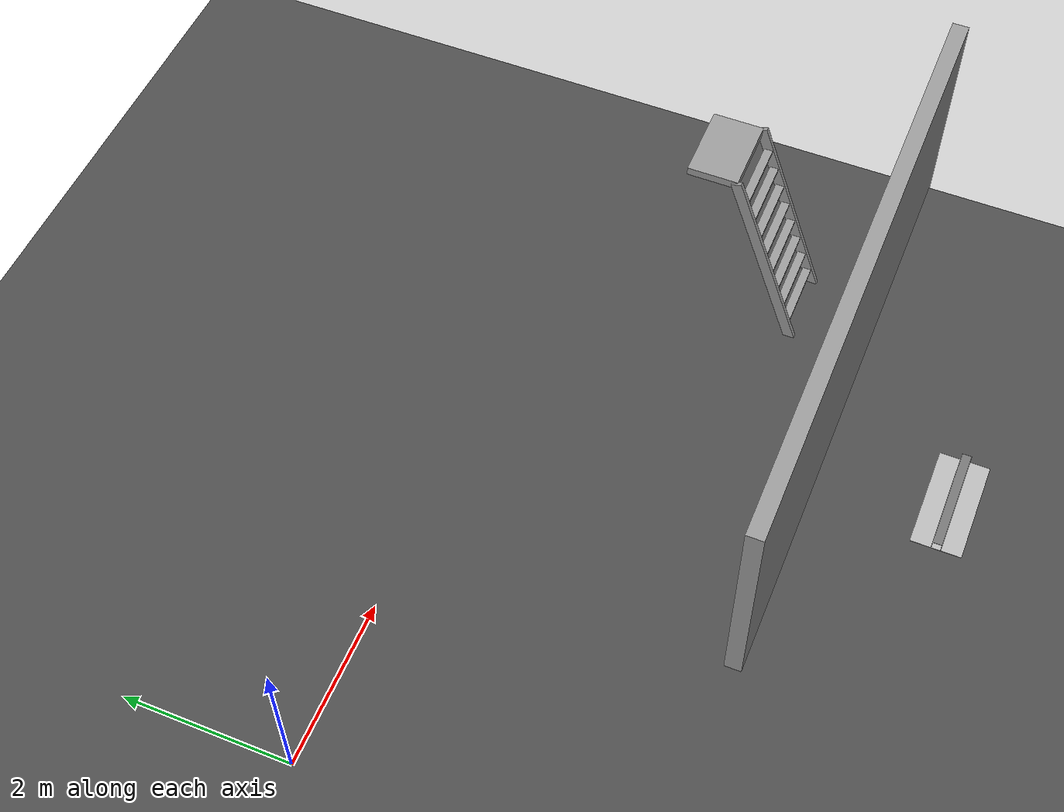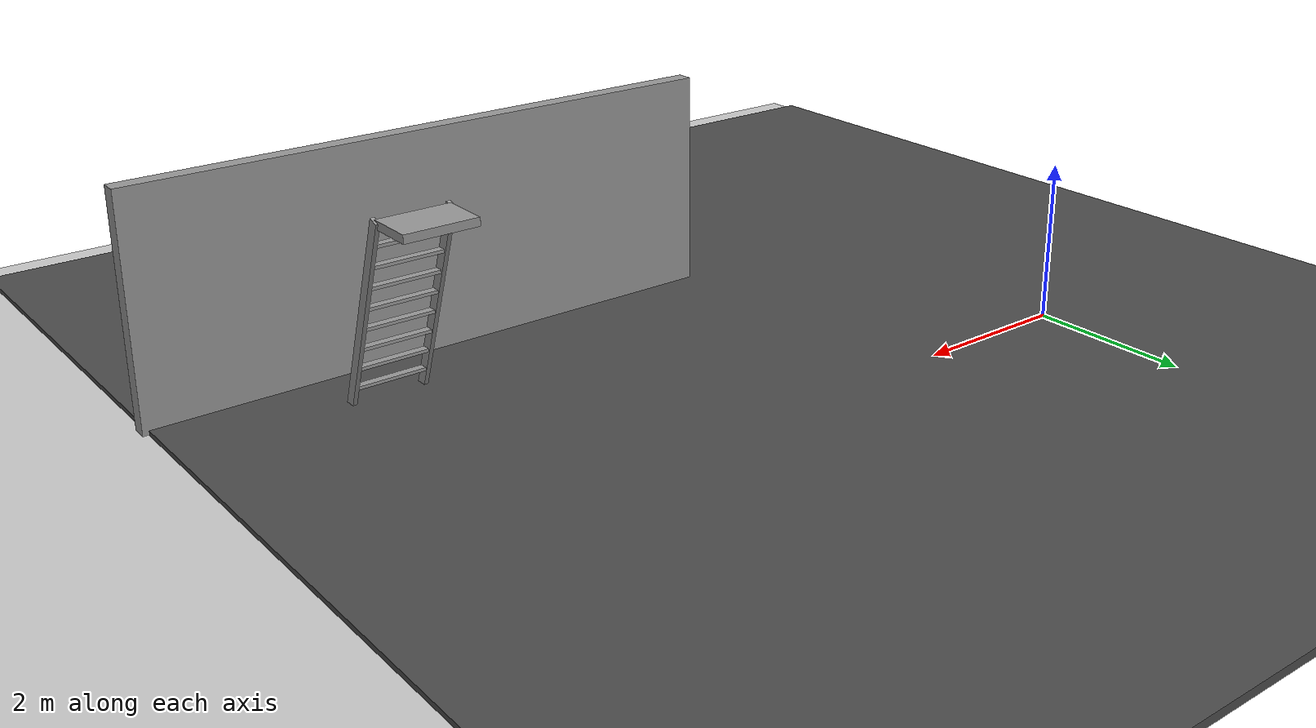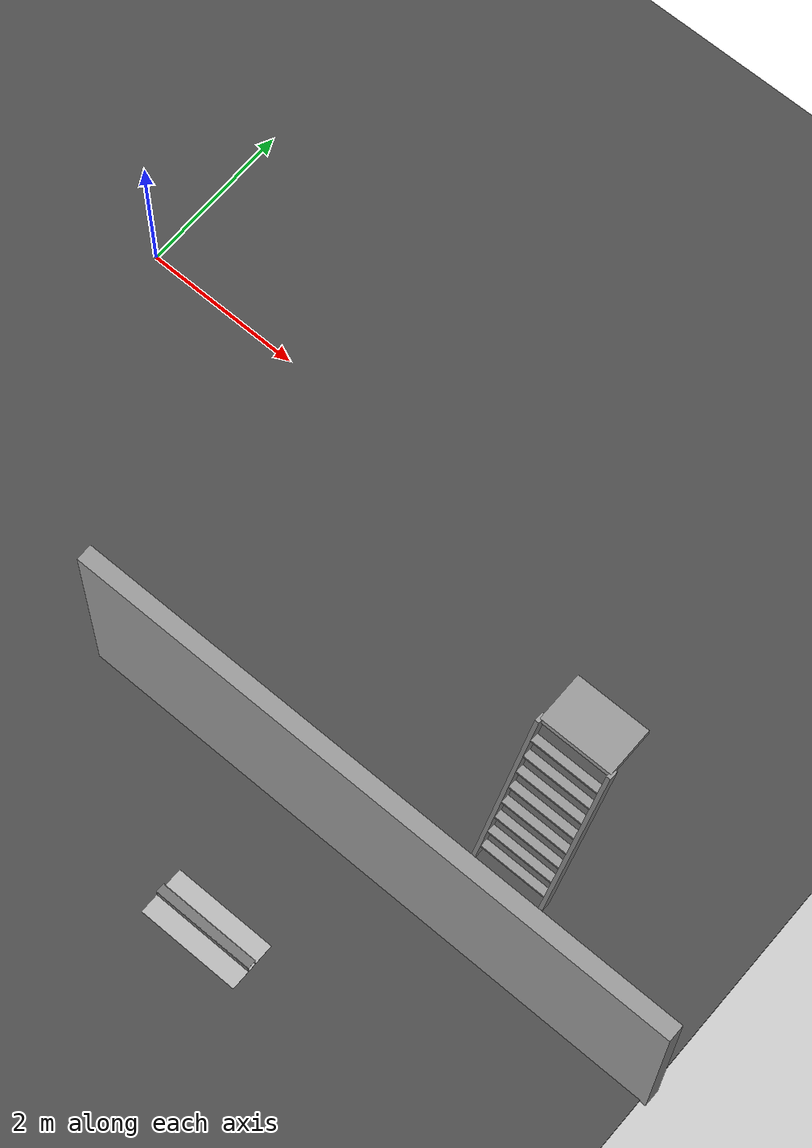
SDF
<sdf version="1.6">
 <world name="default">
  <model name="ground_plane">
   <static>1</static>
   <link name="link">
    <collision name="collision">
     <geometry><plane><normal>0 0 1</normal><size>100 100</size></plane></geometry>
     <surface><friction><ode><mu>100</mu><mu2>50</mu2></ode></friction></surface>
    </collision>
    <visual name="visual">
     <cast_shadows>0</cast_shadows>
     <geometry><plane><normal>0 0 1</normal><size>100 100</size></plane></geometry>
     <material>
      <script><uri>file://media/materials/scripts/gazebo.material</uri><name>Gazebo/Grey</name></script>
     </material>
    </visual>
   </link>
  </model>
  <model name="asphalt_plane">
   <static>1</static>
   <link name="link">
    <collision name="collision"><geometry><box><size>20 20 0.1</size></box></geometry></collision>
    <visual name="visual">
     <cast_shadows>0</cast_shadows>
     <geometry><box><size>20 20 0.1</size></box></geometry>
     <material>
      <script>
       <uri>model://asphalt_plane/materials/scripts</uri>
       <uri>model://asphalt_plane/materials/textures</uri>
       <name>vrc/asphalt</name>
      </script>
     </material>
    </visual>
   </link>
   <pose>0.18195 0.421411 0 0 -0 0</pose>
  </model>
  <model name="frc2016_rockwall">
   <static>1</static>
   <link name="link">
    <inertial>
     <mass>10</mass>
     <pose>0 0 0.08974 0 -0 0</pose>
     <inertia><ixx>0.327091</ixx><ixy>0</ixy><ixz>0</ixz><iyy>1.37417</iyy><iyz>0</iyz><izz>1.64109</izz></inertia>
    </inertial>
    <visual name="platform">
     <pose>0 0 0.06432 0 -0 0</pose>
     <geometry><box><size>1.27 0.5969 0.003175</size></box></geometry>
    </visual>
    <collision name="platform">
     <pose>0 0 0.06432 0 -0 0</pose>
     <geometry><box><size>1.27 0.5969 0.003175</size></box></geometry>
    </collision>
    <visual name="up1">
     <pose>0 0.05166 0.12537 0 -0 0</pose>
     <geometry><box><size>1.27 0.00462 0.11892</size></box></geometry>
     <material><ambient>0.46 0.46 0.46 1</ambient><diffuse>0.46 0.46 0.46 1</diffuse></material>
    </visual>
    <collision name="up1">
     <pose>0 0.05166 0.12537 0 -0 0</pose>
     <geometry><box><size>1.27 0.00462 0.11892</size></box></geometry>
    </collision>
    <visual name="up2">
     <pose>0 -0.05801 0.12537 0 -0 0</pose>
     <geometry><box><size>1.27 0.00462 0.11892</size></box></geometry>
     <material><ambient>0.46 0.46 0.46 1</ambient><diffuse>0.46 0.46 0.46 1</diffuse></material>
    </visual>
    <collision name="up2">
     <pose>0 -0.05801 0.12537 0 -0 0</pose>
     <geometry><box><size>1.27 0.00462 0.11892</size></box></geometry>
    </collision>
    <visual name="top">
     <pose>0 -0.00249 0.18252 0 -0 0</pose>
     <geometry><box><size>1.27 0.1143 0.00462</size></box></geometry>
     <material><ambient>0.46 0.46 0.46 1</ambient><diffuse>0.46 0.46 0.46 1</diffuse></material>
    </visual>
    <collision name="top">
     <pose>0 -0.00249 0.18252 0 -0 0</pose>
     <geometry><box><size>1.27 0.1143 0.00462</size></box></geometry>
    </collision>
   </link>
   <pose>5.64005 -5.50568 0 0 -0 0</pose>
  </model>
  <model name="grey_wall">
   <static>1</static>
   <link name="link">
    <pose>0 0 1.4 0 -0 0</pose>
    <collision name="collision"><geometry><box><size>7.5 0.2 2.8</size></box></geometry></collision>
    <visual name="visual">
     <cast_shadows>0</cast_shadows>
     <geometry><box><size>7.5 0.2 2.8</size></box></geometry>
     <material>
      <script>
       <uri>model://grey_wall/materials/scripts</uri>
       <uri>model://grey_wall/materials/textures</uri>
       <name>vrc/grey_wall</name>
      </script>
     </material>
    </visual>
   </link>
   <pose>6.50695 -3.88753 0 0 -0 0</pose>
  </model>
  <model name="ladder_70deg_0rails">
   <static>1</static>
   <link name="step0">
    <pose>0 0.097059 0.266667 0 -0 0</pose>
    <inertial>
     <mass>9.75482</mass>
     <inertia>
      <ixx>0.00957124</ixx>
      <iyy>0.65963</iyy>
      <izz>0.666842</izz>
      <ixy>0</ixy>
      <ixz>0</ixz>
      <iyz>0</iyz>
     </inertia>
    </inertial>
    <collision name="collision"><geometry><box><size>0.9 0.1016 0.0381</size></box></geometry></collision>
    <visual name="visual">
     <geometry><box><size>0.9 0.1016 0.0381</size></box></geometry>
     <material>
      <script><uri>file://media/materials/scripts/gazebo.material</uri><name>Gazebo/Grey</name></script>
     </material>
    </visual>
   </link>
   <link name="step1">
    <pose>0 0.194117 0.533333 0 -0 0</pose>
    <inertial>
     <mass>9.75482</mass>
     <inertia>
      <ixx>0.00957124</ixx>
      <iyy>0.65963</iyy>
      <izz>0.666842</izz>
      <ixy>0</ixy>
      <ixz>0</ixz>
      <iyz>0</iyz>
     </inertia>
    </inertial>
    <collision name="collision"><geometry><box><size>0.9 0.1016 0.0381</size></box></geometry></collision>
    <visual name="visual">
     <geometry><box><size>0.9 0.1016 0.0381</size></box></geometry>
     <material>
      <script><uri>file://media/materials/scripts/gazebo.material</uri><name>Gazebo/Grey</name></script>
     </material>
    </visual>
   </link>
   <link name="step2">
    <pose>0 0.291176 0.8 0 -0 0</pose>
    <inertial>
     <mass>9.75482</mass>
     <inertia>
      <ixx>0.00957124</ixx>
      <iyy>0.65963</iyy>
      <izz>0.666842</izz>
      <ixy>0</ixy>
      <ixz>0</ixz>
      <iyz>0</iyz>
     </inertia>
    </inertial>
    <collision name="collision"><geometry><box><size>0.9 0.1016 0.0381</size></box></geometry></collision>
    <visual name="visual">
     <geometry><box><size>0.9 0.1016 0.0381</size></box></geometry>
     <material>
      <script><uri>file://media/materials/scripts/gazebo.material</uri><name>Gazebo/Grey</name></script>
     </material>
    </visual>
   </link>
   <link name="step3">
    <pose>0 0.388235 1.06667 0 -0 0</pose>
    <inertial>
     <mass>9.75482</mass>
     <inertia>
      <ixx>0.00957124</ixx>
      <iyy>0.65963</iyy>
      <izz>0.666842</izz>
      <ixy>0</ixy>
      <ixz>0</ixz>
      <iyz>0</iyz>
     </inertia>
    </inertial>
    <collision name="collision"><geometry><box><size>0.9 0.1016 0.0381</size></box></geometry></collision>
    <visual name="visual">
     <geometry><box><size>0.9 0.1016 0.0381</size></box></geometry>
     <material>
      <script><uri>file://media/materials/scripts/gazebo.material</uri><name>Gazebo/Grey</name></script>
     </material>
    </visual>
   </link>
   <link name="step4">
    <pose>0 0.485294 1.33333 0 -0 0</pose>
    <inertial>
     <mass>9.75482</mass>
     <inertia>
      <ixx>0.00957124</ixx>
      <iyy>0.65963</iyy>
      <izz>0.666842</izz>
      <ixy>0</ixy>
      <ixz>0</ixz>
      <iyz>0</iyz>
     </inertia>
    </inertial>
    <collision name="collision"><geometry><box><size>0.9 0.1016 0.0381</size></box></geometry></collision>
    <visual name="visual">
     <geometry><box><size>0.9 0.1016 0.0381</size></box></geometry>
     <material>
      <script><uri>file://media/materials/scripts/gazebo.material</uri><name>Gazebo/Grey</name></script>
     </material>
    </visual>
   </link>
   <link name="step5">
    <pose>0 0.582352 1.6 0 -0 0</pose>
    <inertial>
     <mass>9.75482</mass>
     <inertia>
      <ixx>0.00957124</ixx>
      <iyy>0.65963</iyy>
      <izz>0.666842</izz>
      <ixy>0</ixy>
      <ixz>0</ixz>
      <iyz>0</iyz>
     </inertia>
    </inertial>
    <collision name="collision"><geometry><box><size>0.9 0.1016 0.0381</size></box></geometry></collision>
    <visual name="visual">
     <geometry><box><size>0.9 0.1016 0.0381</size></box></geometry>
     <material>
      <script><uri>file://media/materials/scripts/gazebo.material</uri><name>Gazebo/Grey</name></script>
     </material>
    </visual>
   </link>
   <link name="step6">
    <pose>0 0.679411 1.86667 0 -0 0</pose>
    <inertial>
     <mass>9.75482</mass>
     <inertia>
      <ixx>0.00957124</ixx>
      <iyy>0.65963</iyy>
      <izz>0.666842</izz>
      <ixy>0</ixy>
      <ixz>0</ixz>
      <iyz>0</iyz>
     </inertia>
    </inertial>
    <collision name="collision"><geometry><box><size>0.9 0.1016 0.0381</size></box></geometry></collision>
    <visual name="visual">
     <geometry><box><size>0.9 0.1016 0.0381</size></box></geometry>
     <material>
      <script><uri>file://media/materials/scripts/gazebo.material</uri><name>Gazebo/Grey</name></script>
     </material>
    </visual>
   </link>
   <link name="step7">
    <pose>0 0.77647 2.13333 0 -0 0</pose>
    <inertial>
     <mass>9.75482</mass>
     <inertia>
      <ixx>0.00957124</ixx>
      <iyy>0.65963</iyy>
      <izz>0.666842</izz>
      <ixy>0</ixy>
      <ixz>0</ixz>
      <iyz>0</iyz>
     </inertia>
    </inertial>
    <collision name="collision"><geometry><box><size>0.9 0.1016 0.0381</size></box></geometry></collision>
    <visual name="visual">
     <geometry><box><size>0.9 0.1016 0.0381</size></box></geometry>
     <material>
      <script><uri>file://media/materials/scripts/gazebo.material</uri><name>Gazebo/Grey</name></script>
     </material>
    </visual>
   </link>
   <link name="landing">
    <pose>0 1.17353 2.4 0 -0 0</pose>
    <inertial>
     <mass>57.6072</mass>
     <inertia><ixx>1.73518</ixx><iyy>3.89545</iyy><izz>5.6167</izz><ixy>0</ixy><ixz>0</ixz><iyz>0</iyz></inertia>
    </inertial>
    <collision name="collision"><geometry><box><size>0.9 0.6 0.1016</size></box></geometry></collision>
    <visual name="visual">
     <geometry><box><size>0.9 0.6 0.1016</size></box></geometry>
     <material>
      <script><uri>file://media/materials/scripts/gazebo.material</uri><name>Gazebo/Grey</name></script>
     </material>
    </visual>
   </link>
   <link name="left_side_wall">
    <pose>-0.45 0.436764 1.2 1.22173 -0 0</pose>
    <collision name="collision"><geometry><box><size>0.0508 2.63403 0.13</size></box></geometry></collision>
    <visual name="visual">
     <geometry><box><size>0.0508 2.63403 0.13</size></box></geometry>
     <material>
      <script><uri>file://media/materials/scripts/gazebo.material</uri><name>Gazebo/Grey</name></script>
     </material>
    </visual>
   </link>
   <link name="right_side_wall">
    <pose>0.45 0.436764 1.2 1.22173 -0 0</pose>
    <collision name="collision"><geometry><box><size>0.0508 2.63403 0.13</size></box></geometry></collision>
    <visual name="visual">
     <geometry><box><size>0.0508 2.63403 0.13</size></box></geometry>
     <material>
      <script><uri>file://media/materials/scripts/gazebo.material</uri><name>Gazebo/Grey</name></script>
     </material>
    </visual>
   </link>
   <pose>7.69532 -3.07049 0 0 -0 0</pose>
  </model>
 </world>
</sdf>
